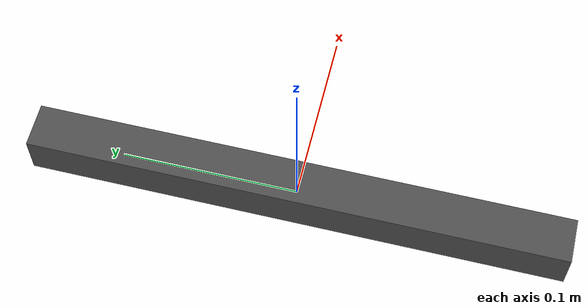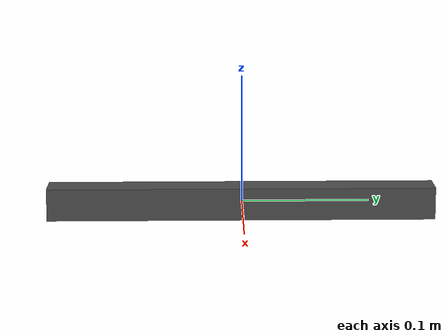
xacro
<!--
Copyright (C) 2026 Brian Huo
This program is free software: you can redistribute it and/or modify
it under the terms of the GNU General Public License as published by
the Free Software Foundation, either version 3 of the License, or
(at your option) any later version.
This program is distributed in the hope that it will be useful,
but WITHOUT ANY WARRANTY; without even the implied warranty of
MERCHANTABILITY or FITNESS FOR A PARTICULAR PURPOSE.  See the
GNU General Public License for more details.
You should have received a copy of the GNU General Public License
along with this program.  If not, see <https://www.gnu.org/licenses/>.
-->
<?xml version="1.0"?>

<robot xmlns:xacro="http://www.ros.org/wiki/xacro" name="bar_12in_scene">

    <link name="base_link" />

    <xacro:include filename="$(find morpheus_description)/urdf/macros/bar_12in.xacro" />
    <xacro:bar_12in
        prefix=""
        parent="base_link"
        x="-0.0127"
        y="-0.1528"
        z="-0.0127"
        scale="0.0254"
    />

</robot>

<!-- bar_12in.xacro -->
<robot name="bar_12in" xmlns:xacro="http://www.ros.org/wiki/xacro">
  <xacro:macro name="bar_12in"
    params="x:=0 y:=0 z:=0 R:=0 P:=0 Y:=0 scale:=0.0254 prefix parent">

    <link name="${prefix}bar_12in">
        <inertial>
            <origin rpy="0 0 0" xyz="${scale * 0.5} ${scale * 6.0} ${scale * 0.5}"/>
            <mass value="0.15"/>
            <inertia ixx="${scale * 12.0}" ixy="0" ixz="0" iyy="${scale * 1.0}" iyz="0" izz="${scale * 12.0}"/>
        </inertial>
        <visual>
            <origin rpy="0 0 0" xyz="0 0 0"/>
            <geometry>
                <mesh filename="file://$(find morpheus_description)/meshes/visual/bar_12in.obj" scale="${scale} ${scale} ${scale}"/>
            </geometry>
            <material name="grey">
                <color rgba="0.3 0.3 0.3 1" />
            </material>
        </visual>
        <collision>
            <origin rpy="0 0 0" xyz="0 0 0" />
            <geometry>
                <mesh filename="file://$(find morpheus_description)/meshes/collision/bar_12in.obj" scale="${scale} ${scale} ${scale}"/>
            </geometry>
        </collision>
    </link>

    <joint name="${prefix}bar_12in_joint" type="fixed">
        <parent link="${parent}" />
        <child link="${prefix}bar_12in" />
        <origin xyz="${x} ${y} ${z}" rpy="${R} ${P} ${Y}" />
    </joint>

  </xacro:macro>

</robot>
